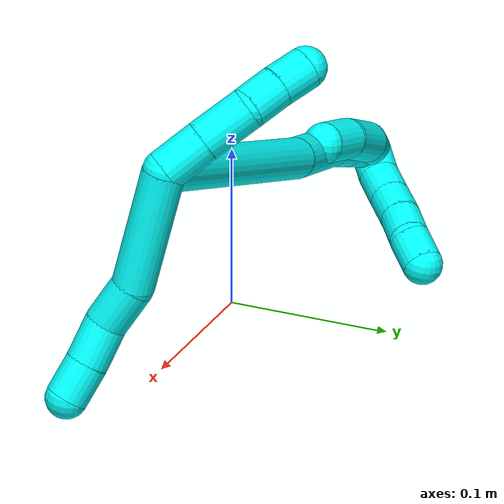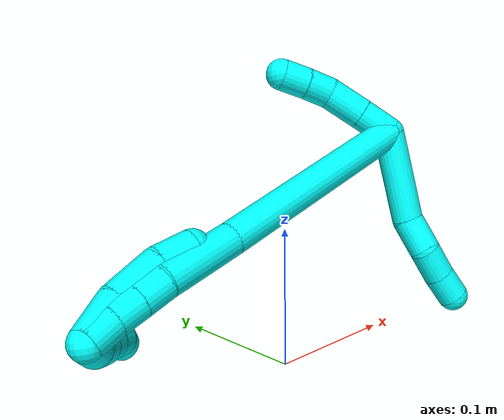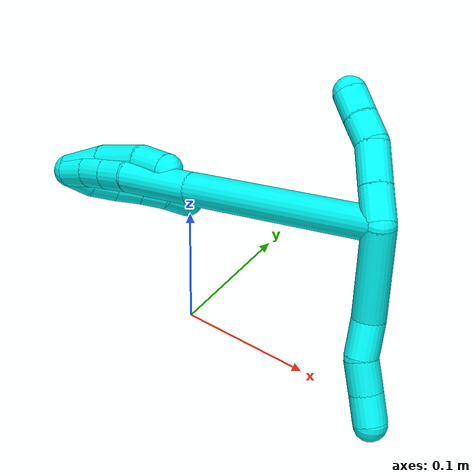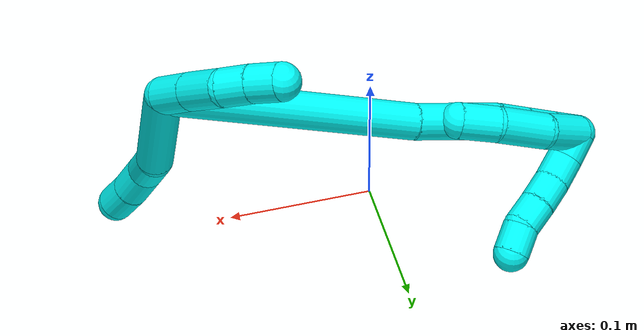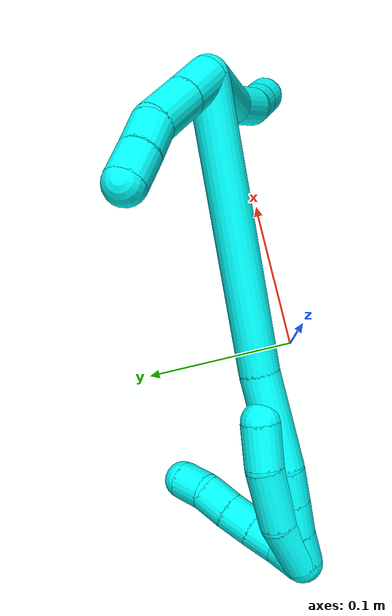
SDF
<sdf version="1.7">
 <world name="default">
  <model name="3">
   <static>0</static>
   <link name="3">
    <collision name="collision-cylinder-e_1_2_8">
     <pose>0.002747 -0.001176 -0.036383 3.10928 0.075308 2.33128</pose>
     <geometry><cylinder><radius>0.0125</radius><length>0.073011</length></cylinder></geometry>
     <surface>
      <friction><ode><mu>1.16</mu><mu2>1.16</mu2><slip1>0</slip1><slip2>0</slip2></ode></friction>
      <contact><ode><kp>1e+06</kp><kd>1</kd><max_vel>0</max_vel><min_depth>0.001</min_depth></ode></contact>
     </surface>
    </collision>
    <visual name="visual-cylinder-e_1_2_8">
     <pose>0.002747 -0.001176 -0.036383 3.10928 0.075308 2.33128</pose>
     <geometry><cylinder><radius>0.0125</radius><length>0.073011</length></cylinder></geometry>
     <material><ambient>0.003922 1 0.996078 1</ambient></material>
    </visual>
    <collision name="collision-cylinder-e_2_8_9">
     <pose>0.008447 -0.006964 -0.085827 2.80211 0.210129 1.10316</pose>
     <geometry><cylinder><radius>0.0125</radius><length>0.028326</length></cylinder></geometry>
     <surface>
      <friction><ode><mu>1.16</mu><mu2>1.16</mu2><slip1>0</slip1><slip2>0</slip2></ode></friction>
      <contact><ode><kp>1e+06</kp><kd>1</kd><max_vel>0</max_vel><min_depth>0.001</min_depth></ode></contact>
     </surface>
    </collision>
    <visual name="visual-cylinder-e_2_8_9">
     <pose>0.008447 -0.006964 -0.085827 2.80211 0.210129 1.10316</pose>
     <geometry><cylinder><radius>0.0125</radius><length>0.028326</length></cylinder></geometry>
     <material><ambient>0.003922 1 0.996078 1</ambient></material>
    </visual>
    <collision name="collision-cylinder-e_3_9_10">
     <pose>0.01655 -0.012227 -0.110549 3.08594 0.415162 2.8788</pose>
     <geometry><cylinder><radius>0.0125</radius><length>0.025527</length></cylinder></geometry>
     <surface>
      <friction><ode><mu>1.16</mu><mu2>1.16</mu2><slip1>0</slip1><slip2>0</slip2></ode></friction>
      <contact><ode><kp>1e+06</kp><kd>1</kd><max_vel>0</max_vel><min_depth>0.001</min_depth></ode></contact>
     </surface>
    </collision>
    <visual name="visual-cylinder-e_3_9_10">
     <pose>0.01655 -0.012227 -0.110549 3.08594 0.415162 2.8788</pose>
     <geometry><cylinder><radius>0.0125</radius><length>0.025527</length></cylinder></geometry>
     <material><ambient>0.003922 1 0.996078 1</ambient></material>
    </visual>
    <collision name="collision-cylinder-e_4_10_6">
     <pose>0.026881 -0.014178 -0.13247 3.01535 0.464642 2.61949</pose>
     <geometry><cylinder><radius>0.0125</radius><length>0.023136</length></cylinder></geometry>
     <surface>
      <friction><ode><mu>1.16</mu><mu2>1.16</mu2><slip1>0</slip1><slip2>0</slip2></ode></friction>
      <contact><ode><kp>1e+06</kp><kd>1</kd><max_vel>0</max_vel><min_depth>0.001</min_depth></ode></contact>
     </surface>
    </collision>
    <visual name="visual-cylinder-e_4_10_6">
     <pose>0.026881 -0.014178 -0.13247 3.01535 0.464642 2.61949</pose>
     <geometry><cylinder><radius>0.0125</radius><length>0.023136</length></cylinder></geometry>
     <material><ambient>0.003922 1 0.996078 1</ambient></material>
    </visual>
    <collision name="collision-cylinder-e_1_2_11">
     <pose>-0.008486 0.005383 0.009202 -0.52931 -0.672306 0.188828</pose>
     <geometry><cylinder><radius>0.0125</radius><length>0.027252</length></cylinder></geometry>
     <surface>
      <friction><ode><mu>1.16</mu><mu2>1.16</mu2><slip1>0</slip1><slip2>0</slip2></ode></friction>
      <contact><ode><kp>1e+06</kp><kd>1</kd><max_vel>0</max_vel><min_depth>0.001</min_depth></ode></contact>
     </surface>
    </collision>
    <visual name="visual-cylinder-e_1_2_11">
     <pose>-0.008486 0.005383 0.009202 -0.52931 -0.672306 0.188828</pose>
     <geometry><cylinder><radius>0.0125</radius><length>0.027252</length></cylinder></geometry>
     <material><ambient>0.003922 1 0.996078 1</ambient></material>
    </visual>
    <collision name="collision-cylinder-e_2_11_12">
     <pose>-0.026585 0.017219 0.028632 -0.562821 -0.671624 0.201117</pose>
     <geometry><cylinder><radius>0.0125</radius><length>0.030898</length></cylinder></geometry>
     <surface>
      <friction><ode><mu>1.16</mu><mu2>1.16</mu2><slip1>0</slip1><slip2>0</slip2></ode></friction>
      <contact><ode><kp>1e+06</kp><kd>1</kd><max_vel>0</max_vel><min_depth>0.001</min_depth></ode></contact>
     </surface>
    </collision>
    <visual name="visual-cylinder-e_2_11_12">
     <pose>-0.026585 0.017219 0.028632 -0.562821 -0.671624 0.201117</pose>
     <geometry><cylinder><radius>0.0125</radius><length>0.030898</length></cylinder></geometry>
     <material><ambient>0.003922 1 0.996078 1</ambient></material>
    </visual>
    <collision name="collision-cylinder-e_3_12_13">
     <pose>-0.045037 0.026188 0.044052 -0.451252 -0.992441 0.247274</pose>
     <geometry><cylinder><radius>0.0125</radius><length>0.021109</length></cylinder></geometry>
     <surface>
      <friction><ode><mu>1.16</mu><mu2>1.16</mu2><slip1>0</slip1><slip2>0</slip2></ode></friction>
      <contact><ode><kp>1e+06</kp><kd>1</kd><max_vel>0</max_vel><min_depth>0.001</min_depth></ode></contact>
     </surface>
    </collision>
    <visual name="visual-cylinder-e_3_12_13">
     <pose>-0.045037 0.026188 0.044052 -0.451252 -0.992441 0.247274</pose>
     <geometry><cylinder><radius>0.0125</radius><length>0.021109</length></cylinder></geometry>
     <material><ambient>0.003922 1 0.996078 1</ambient></material>
    </visual>
    <collision name="collision-cylinder-e_4_13_5">
     <pose>-0.0626 0.031689 0.053988 -0.561671 -0.999821 0.312536</pose>
     <geometry><cylinder><radius>0.0125</radius><length>0.020741</length></cylinder></geometry>
     <surface>
      <friction><ode><mu>1.16</mu><mu2>1.16</mu2><slip1>0</slip1><slip2>0</slip2></ode></friction>
      <contact><ode><kp>1e+06</kp><kd>1</kd><max_vel>0</max_vel><min_depth>0.001</min_depth></ode></contact>
     </surface>
    </collision>
    <visual name="visual-cylinder-e_4_13_5">
     <pose>-0.0626 0.031689 0.053988 -0.561671 -0.999821 0.312536</pose>
     <geometry><cylinder><radius>0.0125</radius><length>0.020741</length></cylinder></geometry>
     <material><ambient>0.003922 1 0.996078 1</ambient></material>
    </visual>
    <collision name="collision-cylinder-e_1_2_14">
     <pose>-0.083548 -0.006927 -0.024927 2.87054 -1.2705 -2.77577</pose>
     <geometry><cylinder><radius>0.0125</radius><length>0.174923</length></cylinder></geometry>
     <surface>
      <friction><ode><mu>1.16</mu><mu2>1.16</mu2><slip1>0</slip1><slip2>0</slip2></ode></friction>
      <contact><ode><kp>1e+06</kp><kd>1</kd><max_vel>0</max_vel><min_depth>0.001</min_depth></ode></contact>
     </surface>
    </collision>
    <visual name="visual-cylinder-e_1_2_14">
     <pose>-0.083548 -0.006927 -0.024927 2.87054 -1.2705 -2.77577</pose>
     <geometry><cylinder><radius>0.0125</radius><length>0.174923</length></cylinder></geometry>
     <material><ambient>0.003922 1 0.996078 1</ambient></material>
    </visual>
    <collision name="collision-cylinder-e_2_14_15">
     <pose>-0.196288 -0.018903 -0.05695 2.5232 -1.28085 -2.33166</pose>
     <geometry><cylinder><radius>0.0125</radius><length>0.060929</length></cylinder></geometry>
     <surface>
      <friction><ode><mu>1.16</mu><mu2>1.16</mu2><slip1>0</slip1><slip2>0</slip2></ode></friction>
      <contact><ode><kp>1e+06</kp><kd>1</kd><max_vel>0</max_vel><min_depth>0.001</min_depth></ode></contact>
     </surface>
    </collision>
    <visual name="visual-cylinder-e_2_14_15">
     <pose>-0.196288 -0.018903 -0.05695 2.5232 -1.28085 -2.33166</pose>
     <geometry><cylinder><radius>0.0125</radius><length>0.060929</length></cylinder></geometry>
     <material><ambient>0.003922 1 0.996078 1</ambient></material>
    </visual>
    <collision name="collision-cylinder-e_3_15_16">
     <pose>-0.235737 -0.024722 -0.067722 2.93518 -1.21986 -2.84731</pose>
     <geometry><cylinder><radius>0.0125</radius><length>0.021844</length></cylinder></geometry>
     <surface>
      <friction><ode><mu>1.16</mu><mu2>1.16</mu2><slip1>0</slip1><slip2>0</slip2></ode></friction>
      <contact><ode><kp>1e+06</kp><kd>1</kd><max_vel>0</max_vel><min_depth>0.001</min_depth></ode></contact>
     </surface>
    </collision>
    <visual name="visual-cylinder-e_3_15_16">
     <pose>-0.235737 -0.024722 -0.067722 2.93518 -1.21986 -2.84731</pose>
     <geometry><cylinder><radius>0.0125</radius><length>0.021844</length></cylinder></geometry>
     <material><ambient>0.003922 1 0.996078 1</ambient></material>
    </visual>
    <collision name="collision-cylinder-e_4_16_17">
     <pose>-0.25577 -0.026171 -0.074812 2.94527 -1.22867 -2.86418</pose>
     <geometry><cylinder><radius>0.0125</radius><length>0.020755</length></cylinder></geometry>
     <surface>
      <friction><ode><mu>1.16</mu><mu2>1.16</mu2><slip1>0</slip1><slip2>0</slip2></ode></friction>
      <contact><ode><kp>1e+06</kp><kd>1</kd><max_vel>0</max_vel><min_depth>0.001</min_depth></ode></contact>
     </surface>
    </collision>
    <visual name="visual-cylinder-e_4_16_17">
     <pose>-0.25577 -0.026171 -0.074812 2.94527 -1.22867 -2.86418</pose>
     <geometry><cylinder><radius>0.0125</radius><length>0.020755</length></cylinder></geometry>
     <material><ambient>0.003922 1 0.996078 1</ambient></material>
    </visual>
    <collision name="collision-cylinder-e_5_17_1">
     <pose>-0.275349 -0.028272 -0.082465 2.81793 -1.14287 -2.64429</pose>
     <geometry><cylinder><radius>0.0125</radius><length>0.021549</length></cylinder></geometry>
     <surface>
      <friction><ode><mu>1.16</mu><mu2>1.16</mu2><slip1>0</slip1><slip2>0</slip2></ode></friction>
      <contact><ode><kp>1e+06</kp><kd>1</kd><max_vel>0</max_vel><min_depth>0.001</min_depth></ode></contact>
     </surface>
    </collision>
    <visual name="visual-cylinder-e_5_17_1">
     <pose>-0.275349 -0.028272 -0.082465 2.81793 -1.14287 -2.64429</pose>
     <geometry><cylinder><radius>0.0125</radius><length>0.021549</length></cylinder></geometry>
     <material><ambient>0.003922 1 0.996078 1</ambient></material>
    </visual>
    <collision name="collision-cylinder-e_1_1_18">
     <pose>-0.280443 -0.02221 -0.091375 -2.12877 0.490278 -0.847426</pose>
     <geometry><cylinder><radius>0.0125</radius><length>0.02</length></cylinder></geometry>
     <surface>
      <friction><ode><mu>1.16</mu><mu2>1.16</mu2><slip1>0</slip1><slip2>0</slip2></ode></friction>
      <contact><ode><kp>1e+06</kp><kd>1</kd><max_vel>0</max_vel><min_depth>0.001</min_depth></ode></contact>
     </surface>
    </collision>
    <visual name="visual-cylinder-e_1_1_18">
     <pose>-0.280443 -0.02221 -0.091375 -2.12877 0.490278 -0.847426</pose>
     <geometry><cylinder><radius>0.0125</radius><length>0.02</length></cylinder></geometry>
     <material><ambient>0.003922 1 0.996078 1</ambient></material>
    </visual>
    <collision name="collision-cylinder-e_2_18_19">
     <pose>-0.270552 -0.006495 -0.098372 -1.84621 0.544724 -0.707298</pose>
     <geometry><cylinder><radius>0.0125</radius><length>0.02</length></cylinder></geometry>
     <surface>
      <friction><ode><mu>1.16</mu><mu2>1.16</mu2><slip1>0</slip1><slip2>0</slip2></ode></friction>
      <contact><ode><kp>1e+06</kp><kd>1</kd><max_vel>0</max_vel><min_depth>0.001</min_depth></ode></contact>
     </surface>
    </collision>
    <visual name="visual-cylinder-e_2_18_19">
     <pose>-0.270552 -0.006495 -0.098372 -1.84621 0.544724 -0.707298</pose>
     <geometry><cylinder><radius>0.0125</radius><length>0.02</length></cylinder></geometry>
     <material><ambient>0.003922 1 0.996078 1</ambient></material>
    </visual>
    <collision name="collision-cylinder-e_3_19_20">
     <pose>-0.259644 0.009804 -0.102147 -1.74849 0.60979 -0.719754</pose>
     <geometry><cylinder><radius>0.0125</radius><length>0.02</length></cylinder></geometry>
     <surface>
      <friction><ode><mu>1.16</mu><mu2>1.16</mu2><slip1>0</slip1><slip2>0</slip2></ode></friction>
      <contact><ode><kp>1e+06</kp><kd>1</kd><max_vel>0</max_vel><min_depth>0.001</min_depth></ode></contact>
     </surface>
    </collision>
    <visual name="visual-cylinder-e_3_19_20">
     <pose>-0.259644 0.009804 -0.102147 -1.74849 0.60979 -0.719754</pose>
     <geometry><cylinder><radius>0.0125</radius><length>0.02</length></cylinder></geometry>
     <material><ambient>0.003922 1 0.996078 1</ambient></material>
    </visual>
    <collision name="collision-cylinder-e_4_20_21">
     <pose>-0.247803 0.025574 -0.105416 -1.80282 0.657791 -0.814435</pose>
     <geometry><cylinder><radius>0.0125</radius><length>0.02</length></cylinder></geometry>
     <surface>
      <friction><ode><mu>1.16</mu><mu2>1.16</mu2><slip1>0</slip1><slip2>0</slip2></ode></friction>
      <contact><ode><kp>1e+06</kp><kd>1</kd><max_vel>0</max_vel><min_depth>0.001</min_depth></ode></contact>
     </surface>
    </collision>
    <visual name="visual-cylinder-e_4_20_21">
     <pose>-0.247803 0.025574 -0.105416 -1.80282 0.657791 -0.814435</pose>
     <geometry><cylinder><radius>0.0125</radius><length>0.02</length></cylinder></geometry>
     <material><ambient>0.003922 1 0.996078 1</ambient></material>
    </visual>
    <collision name="collision-cylinder-e_5_21_4">
     <pose>-0.237901 0.041574 -0.111331 -2.02923 0.38855 -0.613072</pose>
     <geometry><cylinder><radius>0.0125</radius><length>0.02</length></cylinder></geometry>
     <surface>
      <friction><ode><mu>1.16</mu><mu2>1.16</mu2><slip1>0</slip1><slip2>0</slip2></ode></friction>
      <contact><ode><kp>1e+06</kp><kd>1</kd><max_vel>0</max_vel><min_depth>0.001</min_depth></ode></contact>
     </surface>
    </collision>
    <visual name="visual-cylinder-e_5_21_4">
     <pose>-0.237901 0.041574 -0.111331 -2.02923 0.38855 -0.613072</pose>
     <geometry><cylinder><radius>0.0125</radius><length>0.02</length></cylinder></geometry>
     <material><ambient>0.003922 1 0.996078 1</ambient></material>
    </visual>
    <collision name="collision-cylinder-e_1_1_22">
     <pose>-0.271883 -0.024218 -0.077855 -0.554123 0.905727 -0.275003</pose>
     <geometry><cylinder><radius>0.0125</radius><length>0.033726</length></cylinder></geometry>
     <surface>
      <friction><ode><mu>1.16</mu><mu2>1.16</mu2><slip1>0</slip1><slip2>0</slip2></ode></friction>
      <contact><ode><kp>1e+06</kp><kd>1</kd><max_vel>0</max_vel><min_depth>0.001</min_depth></ode></contact>
     </surface>
    </collision>
    <visual name="visual-cylinder-e_1_1_22">
     <pose>-0.271883 -0.024218 -0.077855 -0.554123 0.905727 -0.275003</pose>
     <geometry><cylinder><radius>0.0125</radius><length>0.033726</length></cylinder></geometry>
     <material><ambient>0.003922 1 0.996078 1</ambient></material>
    </visual>
    <collision name="collision-cylinder-e_2_22_23">
     <pose>-0.241076 -0.016204 -0.061358 -0.320486 1.1401 -0.206483</pose>
     <geometry><cylinder><radius>0.0125</radius><length>0.038602</length></cylinder></geometry>
     <surface>
      <friction><ode><mu>1.16</mu><mu2>1.16</mu2><slip1>0</slip1><slip2>0</slip2></ode></friction>
      <contact><ode><kp>1e+06</kp><kd>1</kd><max_vel>0</max_vel><min_depth>0.001</min_depth></ode></contact>
     </surface>
    </collision>
    <visual name="visual-cylinder-e_2_22_23">
     <pose>-0.241076 -0.016204 -0.061358 -0.320486 1.1401 -0.206483</pose>
     <geometry><cylinder><radius>0.0125</radius><length>0.038602</length></cylinder></geometry>
     <material><ambient>0.003922 1 0.996078 1</ambient></material>
    </visual>
    <collision name="collision-cylinder-e_3_23_3">
     <pose>-0.20997 -0.013437 -0.051008 -0.084184 1.37351 -0.069036</pose>
     <geometry><cylinder><radius>0.0125</radius><length>0.027673</length></cylinder></geometry>
     <surface>
      <friction><ode><mu>1.16</mu><mu2>1.16</mu2><slip1>0</slip1><slip2>0</slip2></ode></friction>
      <contact><ode><kp>1e+06</kp><kd>1</kd><max_vel>0</max_vel><min_depth>0.001</min_depth></ode></contact>
     </surface>
    </collision>
    <visual name="visual-cylinder-e_3_23_3">
     <pose>-0.20997 -0.013437 -0.051008 -0.084184 1.37351 -0.069036</pose>
     <geometry><cylinder><radius>0.0125</radius><length>0.027673</length></cylinder></geometry>
     <material><ambient>0.003922 1 0.996078 1</ambient></material>
    </visual>
    <collision name="collision-sphere-3">
     <pose>-0.196402 -0.013209 -0.048306 0 -0 0</pose>
     <geometry><sphere><radius>0.0125</radius></sphere></geometry>
     <surface>
      <friction><ode><mu>1.16</mu><mu2>1.16</mu2><slip1>0</slip1><slip2>0</slip2></ode></friction>
      <contact><ode><kp>1e+06</kp><kd>1</kd><max_vel>0</max_vel><min_depth>0.001</min_depth></ode></contact>
     </surface>
    </collision>
    <visual name="visual-sphere-3">
     <pose>-0.196402 -0.013209 -0.048306 0 -0 0</pose>
     <geometry><sphere><radius>0.0125</radius></sphere></geometry>
     <material><ambient>0.003922 1 0.996078 1</ambient></material>
    </visual>
    <collision name="collision-sphere-23">
     <pose>-0.223538 -0.013665 -0.05371 0 -0 0</pose>
     <geometry><sphere><radius>0.0125</radius></sphere></geometry>
     <surface>
      <friction><ode><mu>1.16</mu><mu2>1.16</mu2><slip1>0</slip1><slip2>0</slip2></ode></friction>
      <contact><ode><kp>1e+06</kp><kd>1</kd><max_vel>0</max_vel><min_depth>0.001</min_depth></ode></contact>
     </surface>
    </collision>
    <visual name="visual-sphere-23">
     <pose>-0.223538 -0.013665 -0.05371 0 -0 0</pose>
     <geometry><sphere><radius>0.0125</radius></sphere></geometry>
     <material><ambient>0.003922 1 0.996078 1</ambient></material>
    </visual>
    <collision name="collision-sphere-22">
     <pose>-0.258614 -0.018742 -0.069006 0 -0 0</pose>
     <geometry><sphere><radius>0.0125</radius></sphere></geometry>
     <surface>
      <friction><ode><mu>1.16</mu><mu2>1.16</mu2><slip1>0</slip1><slip2>0</slip2></ode></friction>
      <contact><ode><kp>1e+06</kp><kd>1</kd><max_vel>0</max_vel><min_depth>0.001</min_depth></ode></contact>
     </surface>
    </collision>
    <visual name="visual-sphere-22">
     <pose>-0.258614 -0.018742 -0.069006 0 -0 0</pose>
     <geometry><sphere><radius>0.0125</radius></sphere></geometry>
     <material><ambient>0.003922 1 0.996078 1</ambient></material>
    </visual>
    <collision name="collision-sphere-4">
     <pose>-0.234112 0.049873 -0.115427 0 -0 0</pose>
     <geometry><sphere><radius>0.0125</radius></sphere></geometry>
     <surface>
      <friction><ode><mu>1.16</mu><mu2>1.16</mu2><slip1>0</slip1><slip2>0</slip2></ode></friction>
      <contact><ode><kp>1e+06</kp><kd>1</kd><max_vel>0</max_vel><min_depth>0.001</min_depth></ode></contact>
     </surface>
    </collision>
    <visual name="visual-sphere-4">
     <pose>-0.234112 0.049873 -0.115427 0 -0 0</pose>
     <geometry><sphere><radius>0.0125</radius></sphere></geometry>
     <material><ambient>0.003922 1 0.996078 1</ambient></material>
    </visual>
    <collision name="collision-sphere-21">
     <pose>-0.241689 0.033275 -0.107235 0 -0 0</pose>
     <geometry><sphere><radius>0.0125</radius></sphere></geometry>
     <surface>
      <friction><ode><mu>1.16</mu><mu2>1.16</mu2><slip1>0</slip1><slip2>0</slip2></ode></friction>
      <contact><ode><kp>1e+06</kp><kd>1</kd><max_vel>0</max_vel><min_depth>0.001</min_depth></ode></contact>
     </surface>
    </collision>
    <visual name="visual-sphere-21">
     <pose>-0.241689 0.033275 -0.107235 0 -0 0</pose>
     <geometry><sphere><radius>0.0125</radius></sphere></geometry>
     <material><ambient>0.003922 1 0.996078 1</ambient></material>
    </visual>
    <collision name="collision-sphere-20">
     <pose>-0.253917 0.017872 -0.103596 0 -0 0</pose>
     <geometry><sphere><radius>0.0125</radius></sphere></geometry>
     <surface>
      <friction><ode><mu>1.16</mu><mu2>1.16</mu2><slip1>0</slip1><slip2>0</slip2></ode></friction>
      <contact><ode><kp>1e+06</kp><kd>1</kd><max_vel>0</max_vel><min_depth>0.001</min_depth></ode></contact>
     </surface>
    </collision>
    <visual name="visual-sphere-20">
     <pose>-0.253917 0.017872 -0.103596 0 -0 0</pose>
     <geometry><sphere><radius>0.0125</radius></sphere></geometry>
     <material><ambient>0.003922 1 0.996078 1</ambient></material>
    </visual>
    <collision name="collision-sphere-11">
     <pose>-0.016972 0.010766 0.018404 0 -0 0</pose>
     <geometry><sphere><radius>0.0125</radius></sphere></geometry>
     <surface>
      <friction><ode><mu>1.16</mu><mu2>1.16</mu2><slip1>0</slip1><slip2>0</slip2></ode></friction>
      <contact><ode><kp>1e+06</kp><kd>1</kd><max_vel>0</max_vel><min_depth>0.001</min_depth></ode></contact>
     </surface>
    </collision>
    <visual name="visual-sphere-11">
     <pose>-0.016972 0.010766 0.018404 0 -0 0</pose>
     <geometry><sphere><radius>0.0125</radius></sphere></geometry>
     <material><ambient>0.003922 1 0.996078 1</ambient></material>
    </visual>
    <collision name="collision-sphere-6">
     <pose>0.032065 -0.01548 -0.142729 0 -0 0</pose>
     <geometry><sphere><radius>0.0125</radius></sphere></geometry>
     <surface>
      <friction><ode><mu>1.16</mu><mu2>1.16</mu2><slip1>0</slip1><slip2>0</slip2></ode></friction>
      <contact><ode><kp>1e+06</kp><kd>1</kd><max_vel>0</max_vel><min_depth>0.001</min_depth></ode></contact>
     </surface>
    </collision>
    <visual name="visual-sphere-6">
     <pose>0.032065 -0.01548 -0.142729 0 -0 0</pose>
     <geometry><sphere><radius>0.0125</radius></sphere></geometry>
     <material><ambient>0.003922 1 0.996078 1</ambient></material>
    </visual>
    <collision name="collision-sphere-10">
     <pose>0.021698 -0.012876 -0.12221 0 -0 0</pose>
     <geometry><sphere><radius>0.0125</radius></sphere></geometry>
     <surface>
      <friction><ode><mu>1.16</mu><mu2>1.16</mu2><slip1>0</slip1><slip2>0</slip2></ode></friction>
      <contact><ode><kp>1e+06</kp><kd>1</kd><max_vel>0</max_vel><min_depth>0.001</min_depth></ode></contact>
     </surface>
    </collision>
    <visual name="visual-sphere-10">
     <pose>0.021698 -0.012876 -0.12221 0 -0 0</pose>
     <geometry><sphere><radius>0.0125</radius></sphere></geometry>
     <material><ambient>0.003922 1 0.996078 1</ambient></material>
    </visual>
    <collision name="collision-sphere-9">
     <pose>0.011402 -0.011577 -0.098888 0 -0 0</pose>
     <geometry><sphere><radius>0.0125</radius></sphere></geometry>
     <surface>
      <friction><ode><mu>1.16</mu><mu2>1.16</mu2><slip1>0</slip1><slip2>0</slip2></ode></friction>
      <contact><ode><kp>1e+06</kp><kd>1</kd><max_vel>0</max_vel><min_depth>0.001</min_depth></ode></contact>
     </surface>
    </collision>
    <visual name="visual-sphere-9">
     <pose>0.011402 -0.011577 -0.098888 0 -0 0</pose>
     <geometry><sphere><radius>0.0125</radius></sphere></geometry>
     <material><ambient>0.003922 1 0.996078 1</ambient></material>
    </visual>
    <collision name="collision-sphere-2">
     <geometry><sphere><radius>0.0125</radius></sphere></geometry>
     <surface>
      <friction><ode><mu>1.16</mu><mu2>1.16</mu2><slip1>0</slip1><slip2>0</slip2></ode></friction>
      <contact><ode><kp>1e+06</kp><kd>1</kd><max_vel>0</max_vel><min_depth>0.001</min_depth></ode></contact>
     </surface>
    </collision>
    <visual name="visual-sphere-2">
     <geometry><sphere><radius>0.0125</radius></sphere></geometry>
     <material><ambient>0.003922 1 0.996078 1</ambient></material>
    </visual>
    <collision name="collision-sphere-19">
     <pose>-0.265371 0.001735 -0.100698 0 -0 0</pose>
     <geometry><sphere><radius>0.0125</radius></sphere></geometry>
     <surface>
      <friction><ode><mu>1.16</mu><mu2>1.16</mu2><slip1>0</slip1><slip2>0</slip2></ode></friction>
      <contact><ode><kp>1e+06</kp><kd>1</kd><max_vel>0</max_vel><min_depth>0.001</min_depth></ode></contact>
     </surface>
    </collision>
    <visual name="visual-sphere-19">
     <pose>-0.265371 0.001735 -0.100698 0 -0 0</pose>
     <geometry><sphere><radius>0.0125</radius></sphere></geometry>
     <material><ambient>0.003922 1 0.996078 1</ambient></material>
    </visual>
    <collision name="collision-sphere-8">
     <pose>0.005493 -0.002352 -0.072766 0 -0 0</pose>
     <geometry><sphere><radius>0.0125</radius></sphere></geometry>
     <surface>
      <friction><ode><mu>1.16</mu><mu2>1.16</mu2><slip1>0</slip1><slip2>0</slip2></ode></friction>
      <contact><ode><kp>1e+06</kp><kd>1</kd><max_vel>0</max_vel><min_depth>0.001</min_depth></ode></contact>
     </surface>
    </collision>
    <visual name="visual-sphere-8">
     <pose>0.005493 -0.002352 -0.072766 0 -0 0</pose>
     <geometry><sphere><radius>0.0125</radius></sphere></geometry>
     <material><ambient>0.003922 1 0.996078 1</ambient></material>
    </visual>
    <collision name="collision-sphere-12">
     <pose>-0.036198 0.023672 0.03886 0 -0 0</pose>
     <geometry><sphere><radius>0.0125</radius></sphere></geometry>
     <surface>
      <friction><ode><mu>1.16</mu><mu2>1.16</mu2><slip1>0</slip1><slip2>0</slip2></ode></friction>
      <contact><ode><kp>1e+06</kp><kd>1</kd><max_vel>0</max_vel><min_depth>0.001</min_depth></ode></contact>
     </surface>
    </collision>
    <visual name="visual-sphere-12">
     <pose>-0.036198 0.023672 0.03886 0 -0 0</pose>
     <geometry><sphere><radius>0.0125</radius></sphere></geometry>
     <material><ambient>0.003922 1 0.996078 1</ambient></material>
    </visual>
    <collision name="collision-sphere-13">
     <pose>-0.053875 0.028704 0.049244 0 -0 0</pose>
     <geometry><sphere><radius>0.0125</radius></sphere></geometry>
     <surface>
      <friction><ode><mu>1.16</mu><mu2>1.16</mu2><slip1>0</slip1><slip2>0</slip2></ode></friction>
      <contact><ode><kp>1e+06</kp><kd>1</kd><max_vel>0</max_vel><min_depth>0.001</min_depth></ode></contact>
     </surface>
    </collision>
    <visual name="visual-sphere-13">
     <pose>-0.053875 0.028704 0.049244 0 -0 0</pose>
     <geometry><sphere><radius>0.0125</radius></sphere></geometry>
     <material><ambient>0.003922 1 0.996078 1</ambient></material>
    </visual>
    <collision name="collision-sphere-5">
     <pose>-0.071326 0.034674 0.058732 0 -0 0</pose>
     <geometry><sphere><radius>0.0125</radius></sphere></geometry>
     <surface>
      <friction><ode><mu>1.16</mu><mu2>1.16</mu2><slip1>0</slip1><slip2>0</slip2></ode></friction>
      <contact><ode><kp>1e+06</kp><kd>1</kd><max_vel>0</max_vel><min_depth>0.001</min_depth></ode></contact>
     </surface>
    </collision>
    <visual name="visual-sphere-5">
     <pose>-0.071326 0.034674 0.058732 0 -0 0</pose>
     <geometry><sphere><radius>0.0125</radius></sphere></geometry>
     <material><ambient>0.003922 1 0.996078 1</ambient></material>
    </visual>
    <collision name="collision-sphere-14">
     <pose>-0.167096 -0.013854 -0.049853 0 -0 0</pose>
     <geometry><sphere><radius>0.0125</radius></sphere></geometry>
     <surface>
      <friction><ode><mu>1.16</mu><mu2>1.16</mu2><slip1>0</slip1><slip2>0</slip2></ode></friction>
      <contact><ode><kp>1e+06</kp><kd>1</kd><max_vel>0</max_vel><min_depth>0.001</min_depth></ode></contact>
     </surface>
    </collision>
    <visual name="visual-sphere-14">
     <pose>-0.167096 -0.013854 -0.049853 0 -0 0</pose>
     <geometry><sphere><radius>0.0125</radius></sphere></geometry>
     <material><ambient>0.003922 1 0.996078 1</ambient></material>
    </visual>
    <collision name="collision-sphere-15">
     <pose>-0.225481 -0.023952 -0.064047 0 -0 0</pose>
     <geometry><sphere><radius>0.0125</radius></sphere></geometry>
     <surface>
      <friction><ode><mu>1.16</mu><mu2>1.16</mu2><slip1>0</slip1><slip2>0</slip2></ode></friction>
      <contact><ode><kp>1e+06</kp><kd>1</kd><max_vel>0</max_vel><min_depth>0.001</min_depth></ode></contact>
     </surface>
    </collision>
    <visual name="visual-sphere-15">
     <pose>-0.225481 -0.023952 -0.064047 0 -0 0</pose>
     <geometry><sphere><radius>0.0125</radius></sphere></geometry>
     <material><ambient>0.003922 1 0.996078 1</ambient></material>
    </visual>
    <collision name="collision-sphere-16">
     <pose>-0.245994 -0.025491 -0.071397 0 -0 0</pose>
     <geometry><sphere><radius>0.0125</radius></sphere></geometry>
     <surface>
      <friction><ode><mu>1.16</mu><mu2>1.16</mu2><slip1>0</slip1><slip2>0</slip2></ode></friction>
      <contact><ode><kp>1e+06</kp><kd>1</kd><max_vel>0</max_vel><min_depth>0.001</min_depth></ode></contact>
     </surface>
    </collision>
    <visual name="visual-sphere-16">
     <pose>-0.245994 -0.025491 -0.071397 0 -0 0</pose>
     <geometry><sphere><radius>0.0125</radius></sphere></geometry>
     <material><ambient>0.003922 1 0.996078 1</ambient></material>
    </visual>
    <collision name="collision-sphere-17">
     <pose>-0.265546 -0.02685 -0.078226 0 -0 0</pose>
     <geometry><sphere><radius>0.0125</radius></sphere></geometry>
     <surface>
      <friction><ode><mu>1.16</mu><mu2>1.16</mu2><slip1>0</slip1><slip2>0</slip2></ode></friction>
      <contact><ode><kp>1e+06</kp><kd>1</kd><max_vel>0</max_vel><min_depth>0.001</min_depth></ode></contact>
     </surface>
    </collision>
    <visual name="visual-sphere-17">
     <pose>-0.265546 -0.02685 -0.078226 0 -0 0</pose>
     <geometry><sphere><radius>0.0125</radius></sphere></geometry>
     <material><ambient>0.003922 1 0.996078 1</ambient></material>
    </visual>
    <collision name="collision-sphere-1">
     <pose>-0.285152 -0.029694 -0.086704 0 -0 0</pose>
     <geometry><sphere><radius>0.0125</radius></sphere></geometry>
     <surface>
      <friction><ode><mu>1.16</mu><mu2>1.16</mu2><slip1>0</slip1><slip2>0</slip2></ode></friction>
      <contact><ode><kp>1e+06</kp><kd>1</kd><max_vel>0</max_vel><min_depth>0.001</min_depth></ode></contact>
     </surface>
    </collision>
    <visual name="visual-sphere-1">
     <pose>-0.285152 -0.029694 -0.086704 0 -0 0</pose>
     <geometry><sphere><radius>0.0125</radius></sphere></geometry>
     <material><ambient>0.003922 1 0.996078 1</ambient></material>
    </visual>
    <collision name="collision-sphere-18">
     <pose>-0.275734 -0.014726 -0.096046 0 -0 0</pose>
     <geometry><sphere><radius>0.0125</radius></sphere></geometry>
     <surface>
      <friction><ode><mu>1.16</mu><mu2>1.16</mu2><slip1>0</slip1><slip2>0</slip2></ode></friction>
      <contact><ode><kp>1e+06</kp><kd>1</kd><max_vel>0</max_vel><min_depth>0.001</min_depth></ode></contact>
     </surface>
    </collision>
    <visual name="visual-sphere-18">
     <pose>-0.275734 -0.014726 -0.096046 0 -0 0</pose>
     <geometry><sphere><radius>0.0125</radius></sphere></geometry>
     <material><ambient>0.003922 1 0.996078 1</ambient></material>
    </visual>
    <inertial>
     <pose>-0.126661 -0.005253 -0.049343 0 -0 0</pose>
     <mass>0.75</mass>
     <inertia>
      <ixx>-0.000182</ixx>
      <ixy>0</ixy>
      <ixz>0</ixz>
      <iyy>0.000503</iyy>
      <iyz>0</iyz>
      <izz>0.000461</izz>
     </inertia>
    </inertial>
   </link>
   <pose>0.143701 0.023507 0.147101 -0.179949 -0.056921 -0.184729</pose>
  </model>
 </world>
</sdf>
